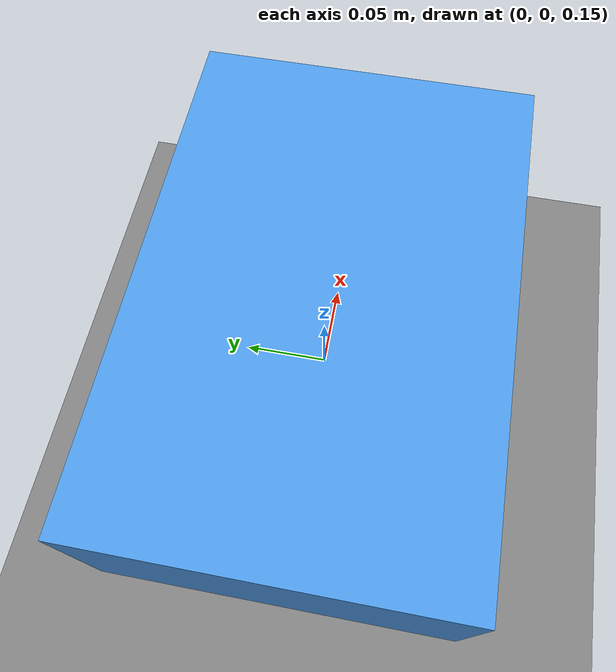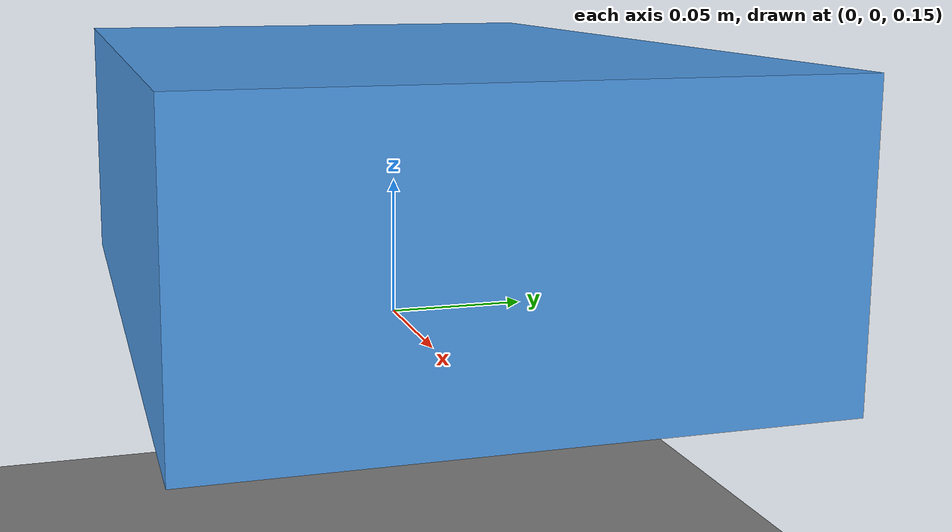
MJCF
<mujoco model="payload_inertia_seeded_failure">
  <compiler angle="degree"/>
  <option gravity="0 0 -9.81" timestep="0.002"/>
  <worldbody>
    <geom name="floor" type="plane" size="2 2 0.1"/>
    <body name="payload" pos="0 0 0.20">
      <freejoint/>
      <!-- This loadable tensor is physically plausible but violates the payload contract. -->
      <inertial pos="0 0 0" mass="2.0" diaginertia="0.008333333333 0.016666666667 0.018"/>
      <geom name="payload_collision" type="box" size="0.15 0.10 0.05" contype="1" conaffinity="1" rgba="0.3 0.6 0.9 1"/>
    </body>
  </worldbody>
</mujoco>
